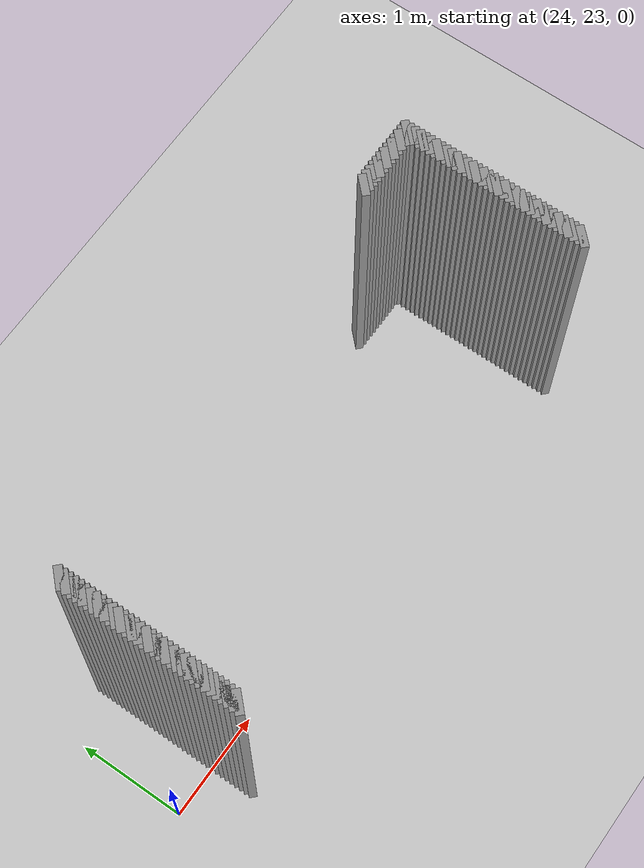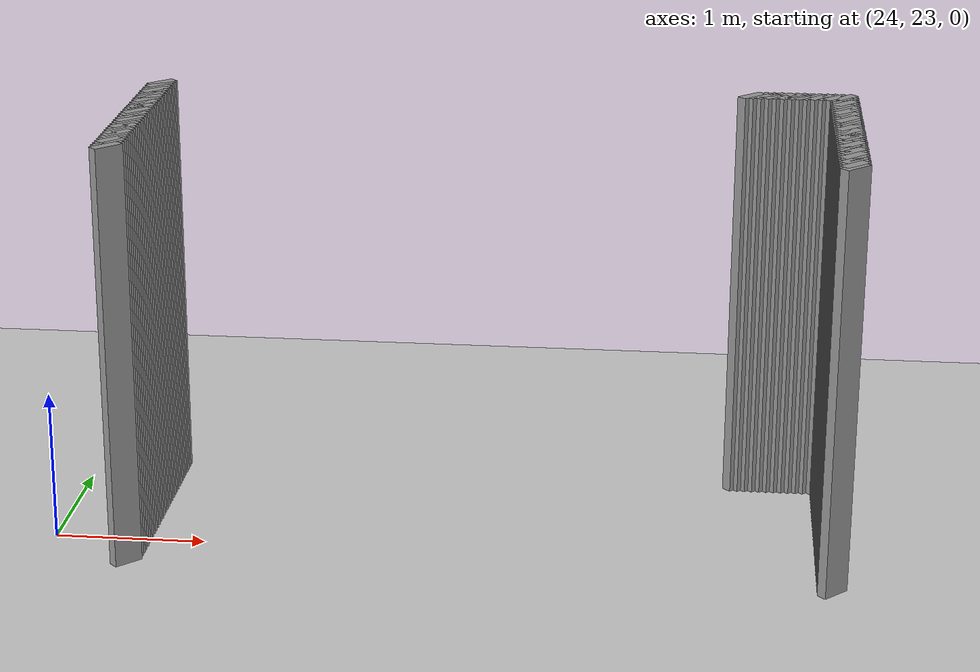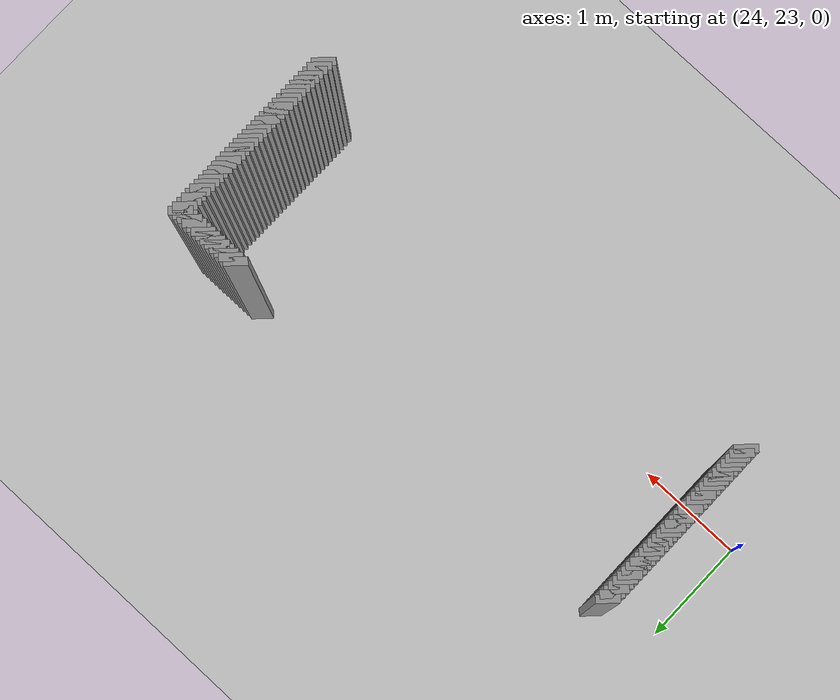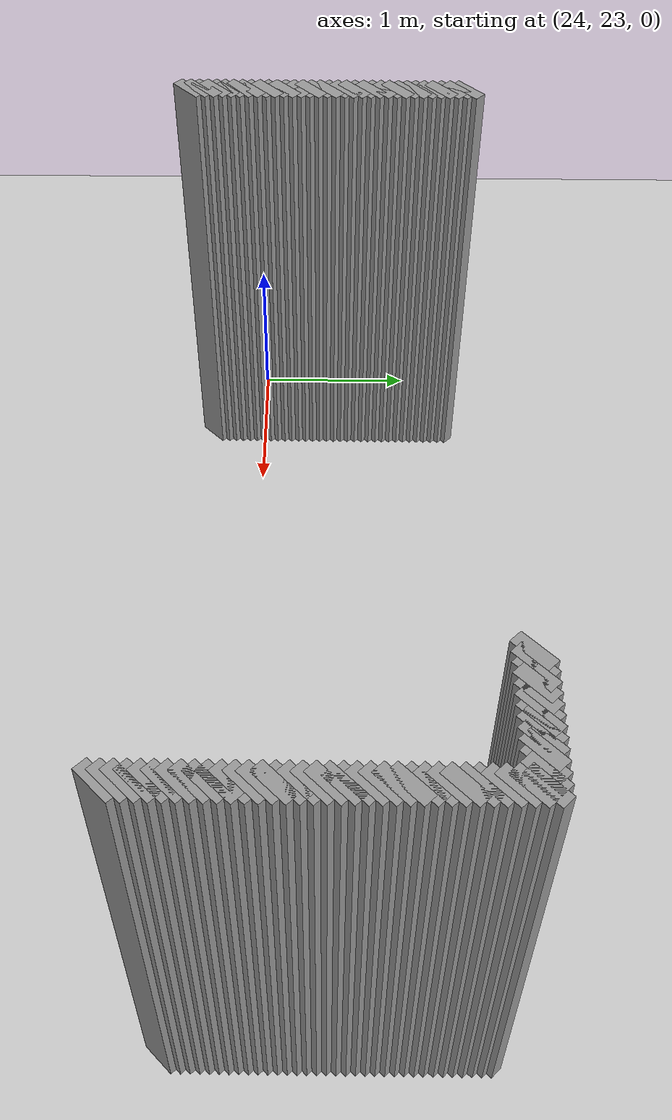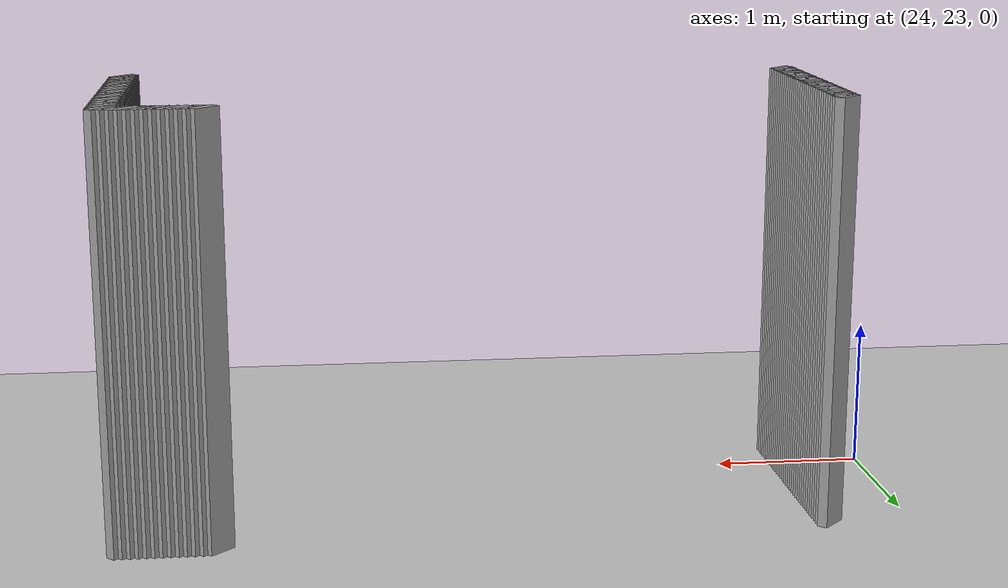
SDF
<sdf version="1.5">
 <world name="default">
  <include><uri>model://ground_plane</uri></include>
  <include><uri>model://sun</uri></include>
  <model name="grey_wall_80">
   <static>1</static>
   <link name="link">
    <pose>28.5 24.3  1.4 0 0 -0.785398163397</pose>
    <collision name="collision"><geometry><box><size>0.0707106781187 .2  2.8</size></box></geometry></collision>
    <visual name="visual">
     <cast_shadows>0</cast_shadows>
     <geometry><box><size>0.0707106781187 .2  2.8</size></box></geometry>
     <material>
      <script>
       <uri>model://grey_wall/materials/scripts</uri>
       <uri>model://grey_wall/materials/textures</uri>
       <name>vrc/grey_wall</name>
      </script>
     </material>
    </visual>
   </link>
  </model>
  <model name="grey_wall_81">
   <static>1</static>
   <link name="link">
    <pose>28.55 24.3  1.4 0 0 -0.785398163397</pose>
    <collision name="collision"><geometry><box><size>0.0707106781187 .2  2.8</size></box></geometry></collision>
    <visual name="visual">
     <cast_shadows>0</cast_shadows>
     <geometry><box><size>0.0707106781187 .2  2.8</size></box></geometry>
     <material>
      <script>
       <uri>model://grey_wall/materials/scripts</uri>
       <uri>model://grey_wall/materials/textures</uri>
       <name>vrc/grey_wall</name>
      </script>
     </material>
    </visual>
   </link>
  </model>
  <model name="grey_wall_82">
   <static>1</static>
   <link name="link">
    <pose>28.6 24.3  1.4 0 0 -0.785398163397</pose>
    <collision name="collision"><geometry><box><size>0.0707106781187 .2  2.8</size></box></geometry></collision>
    <visual name="visual">
     <cast_shadows>0</cast_shadows>
     <geometry><box><size>0.0707106781187 .2  2.8</size></box></geometry>
     <material>
      <script>
       <uri>model://grey_wall/materials/scripts</uri>
       <uri>model://grey_wall/materials/textures</uri>
       <name>vrc/grey_wall</name>
      </script>
     </material>
    </visual>
   </link>
  </model>
  <model name="grey_wall_83">
   <static>1</static>
   <link name="link">
    <pose>28.65 24.3  1.4 0 0 -0.785398163397</pose>
    <collision name="collision"><geometry><box><size>0.0707106781187 .2  2.8</size></box></geometry></collision>
    <visual name="visual">
     <cast_shadows>0</cast_shadows>
     <geometry><box><size>0.0707106781187 .2  2.8</size></box></geometry>
     <material>
      <script>
       <uri>model://grey_wall/materials/scripts</uri>
       <uri>model://grey_wall/materials/textures</uri>
       <name>vrc/grey_wall</name>
      </script>
     </material>
    </visual>
   </link>
  </model>
  <model name="grey_wall_84">
   <static>1</static>
   <link name="link">
    <pose>28.7 24.3  1.4 0 0 -0.785398163397</pose>
    <collision name="collision"><geometry><box><size>0.0707106781187 .2  2.8</size></box></geometry></collision>
    <visual name="visual">
     <cast_shadows>0</cast_shadows>
     <geometry><box><size>0.0707106781187 .2  2.8</size></box></geometry>
     <material>
      <script>
       <uri>model://grey_wall/materials/scripts</uri>
       <uri>model://grey_wall/materials/textures</uri>
       <name>vrc/grey_wall</name>
      </script>
     </material>
    </visual>
   </link>
  </model>
  <model name="grey_wall_85">
   <static>1</static>
   <link name="link">
    <pose>28.75 24.3  1.4 0 0 -0.785398163397</pose>
    <collision name="collision"><geometry><box><size>0.0707106781187 .2  2.8</size></box></geometry></collision>
    <visual name="visual">
     <cast_shadows>0</cast_shadows>
     <geometry><box><size>0.0707106781187 .2  2.8</size></box></geometry>
     <material>
      <script>
       <uri>model://grey_wall/materials/scripts</uri>
       <uri>model://grey_wall/materials/textures</uri>
       <name>vrc/grey_wall</name>
      </script>
     </material>
    </visual>
   </link>
  </model>
  <model name="grey_wall_86">
   <static>1</static>
   <link name="link">
    <pose>28.8 24.3  1.4 0 0 -0.785398163397</pose>
    <collision name="collision"><geometry><box><size>0.0707106781187 .2  2.8</size></box></geometry></collision>
    <visual name="visual">
     <cast_shadows>0</cast_shadows>
     <geometry><box><size>0.0707106781187 .2  2.8</size></box></geometry>
     <material>
      <script>
       <uri>model://grey_wall/materials/scripts</uri>
       <uri>model://grey_wall/materials/textures</uri>
       <name>vrc/grey_wall</name>
      </script>
     </material>
    </visual>
   </link>
  </model>
  <model name="grey_wall_87">
   <static>1</static>
   <link name="link">
    <pose>28.85 24.3  1.4 0 0 -0.785398163397</pose>
    <collision name="collision"><geometry><box><size>0.0707106781187 .2  2.8</size></box></geometry></collision>
    <visual name="visual">
     <cast_shadows>0</cast_shadows>
     <geometry><box><size>0.0707106781187 .2  2.8</size></box></geometry>
     <material>
      <script>
       <uri>model://grey_wall/materials/scripts</uri>
       <uri>model://grey_wall/materials/textures</uri>
       <name>vrc/grey_wall</name>
      </script>
     </material>
    </visual>
   </link>
  </model>
  <model name="grey_wall_88">
   <static>1</static>
   <link name="link">
    <pose>28.9 24.3  1.4 0 0 -0.785398163397</pose>
    <collision name="collision"><geometry><box><size>0.0707106781187 .2  2.8</size></box></geometry></collision>
    <visual name="visual">
     <cast_shadows>0</cast_shadows>
     <geometry><box><size>0.0707106781187 .2  2.8</size></box></geometry>
     <material>
      <script>
       <uri>model://grey_wall/materials/scripts</uri>
       <uri>model://grey_wall/materials/textures</uri>
       <name>vrc/grey_wall</name>
      </script>
     </material>
    </visual>
   </link>
  </model>
  <model name="grey_wall_89">
   <static>1</static>
   <link name="link">
    <pose>28.95 24.3  1.4 0 0 -0.785398163397</pose>
    <collision name="collision"><geometry><box><size>0.0707106781187 .2  2.8</size></box></geometry></collision>
    <visual name="visual">
     <cast_shadows>0</cast_shadows>
     <geometry><box><size>0.0707106781187 .2  2.8</size></box></geometry>
     <material>
      <script>
       <uri>model://grey_wall/materials/scripts</uri>
       <uri>model://grey_wall/materials/textures</uri>
       <name>vrc/grey_wall</name>
      </script>
     </material>
    </visual>
   </link>
  </model>
  <model name="grey_wall_90">
   <static>1</static>
   <link name="link">
    <pose>29.0 24.3  1.4 0 0 -0.785398163397</pose>
    <collision name="collision"><geometry><box><size>0.0707106781187 .2  2.8</size></box></geometry></collision>
    <visual name="visual">
     <cast_shadows>0</cast_shadows>
     <geometry><box><size>0.0707106781187 .2  2.8</size></box></geometry>
     <material>
      <script>
       <uri>model://grey_wall/materials/scripts</uri>
       <uri>model://grey_wall/materials/textures</uri>
       <name>vrc/grey_wall</name>
      </script>
     </material>
    </visual>
   </link>
  </model>
  <model name="grey_wall_91">
   <static>1</static>
   <link name="link">
    <pose>29.05 24.3  1.4 0 0 -0.785398163397</pose>
    <collision name="collision"><geometry><box><size>0.0707106781187 .2  2.8</size></box></geometry></collision>
    <visual name="visual">
     <cast_shadows>0</cast_shadows>
     <geometry><box><size>0.0707106781187 .2  2.8</size></box></geometry>
     <material>
      <script>
       <uri>model://grey_wall/materials/scripts</uri>
       <uri>model://grey_wall/materials/textures</uri>
       <name>vrc/grey_wall</name>
      </script>
     </material>
    </visual>
   </link>
  </model>
  <model name="grey_wall_92">
   <static>1</static>
   <link name="link">
    <pose>29.1 24.3  1.4 0 0 -0.785398163397</pose>
    <collision name="collision"><geometry><box><size>0.0707106781187 .2  2.8</size></box></geometry></collision>
    <visual name="visual">
     <cast_shadows>0</cast_shadows>
     <geometry><box><size>0.0707106781187 .2  2.8</size></box></geometry>
     <material>
      <script>
       <uri>model://grey_wall/materials/scripts</uri>
       <uri>model://grey_wall/materials/textures</uri>
       <name>vrc/grey_wall</name>
      </script>
     </material>
    </visual>
   </link>
  </model>
  <model name="grey_wall_93">
   <static>1</static>
   <link name="link">
    <pose>24.55 24.25  1.4 0 0 -0.785398163397</pose>
    <collision name="collision"><geometry><box><size>0.0707106781187 .2  2.8</size></box></geometry></collision>
    <visual name="visual">
     <cast_shadows>0</cast_shadows>
     <geometry><box><size>0.0707106781187 .2  2.8</size></box></geometry>
     <material>
      <script>
       <uri>model://grey_wall/materials/scripts</uri>
       <uri>model://grey_wall/materials/textures</uri>
       <name>vrc/grey_wall</name>
      </script>
     </material>
    </visual>
   </link>
  </model>
  <model name="grey_wall_94">
   <static>1</static>
   <link name="link">
    <pose>29.1 24.25  1.4 0 0 -0.785398163397</pose>
    <collision name="collision"><geometry><box><size>0.0707106781187 .2  2.8</size></box></geometry></collision>
    <visual name="visual">
     <cast_shadows>0</cast_shadows>
     <geometry><box><size>0.0707106781187 .2  2.8</size></box></geometry>
     <material>
      <script>
       <uri>model://grey_wall/materials/scripts</uri>
       <uri>model://grey_wall/materials/textures</uri>
       <name>vrc/grey_wall</name>
      </script>
     </material>
    </visual>
   </link>
  </model>
  <model name="grey_wall_95">
   <static>1</static>
   <link name="link">
    <pose>24.55 24.2  1.4 0 0 -0.785398163397</pose>
    <collision name="collision"><geometry><box><size>0.0707106781187 .2  2.8</size></box></geometry></collision>
    <visual name="visual">
     <cast_shadows>0</cast_shadows>
     <geometry><box><size>0.0707106781187 .2  2.8</size></box></geometry>
     <material>
      <script>
       <uri>model://grey_wall/materials/scripts</uri>
       <uri>model://grey_wall/materials/textures</uri>
       <name>vrc/grey_wall</name>
      </script>
     </material>
    </visual>
   </link>
  </model>
  <model name="grey_wall_96">
   <static>1</static>
   <link name="link">
    <pose>29.1 24.2  1.4 0 0 -0.785398163397</pose>
    <collision name="collision"><geometry><box><size>0.0707106781187 .2  2.8</size></box></geometry></collision>
    <visual name="visual">
     <cast_shadows>0</cast_shadows>
     <geometry><box><size>0.0707106781187 .2  2.8</size></box></geometry>
     <material>
      <script>
       <uri>model://grey_wall/materials/scripts</uri>
       <uri>model://grey_wall/materials/textures</uri>
       <name>vrc/grey_wall</name>
      </script>
     </material>
    </visual>
   </link>
  </model>
  <model name="grey_wall_97">
   <static>1</static>
   <link name="link">
    <pose>24.55 24.15  1.4 0 0 -0.785398163397</pose>
    <collision name="collision"><geometry><box><size>0.0707106781187 .2  2.8</size></box></geometry></collision>
    <visual name="visual">
     <cast_shadows>0</cast_shadows>
     <geometry><box><size>0.0707106781187 .2  2.8</size></box></geometry>
     <material>
      <script>
       <uri>model://grey_wall/materials/scripts</uri>
       <uri>model://grey_wall/materials/textures</uri>
       <name>vrc/grey_wall</name>
      </script>
     </material>
    </visual>
   </link>
  </model>
  <model name="grey_wall_98">
   <static>1</static>
   <link name="link">
    <pose>29.1 24.15  1.4 0 0 -0.785398163397</pose>
    <collision name="collision"><geometry><box><size>0.0707106781187 .2  2.8</size></box></geometry></collision>
    <visual name="visual">
     <cast_shadows>0</cast_shadows>
     <geometry><box><size>0.0707106781187 .2  2.8</size></box></geometry>
     <material>
      <script>
       <uri>model://grey_wall/materials/scripts</uri>
       <uri>model://grey_wall/materials/textures</uri>
       <name>vrc/grey_wall</name>
      </script>
     </material>
    </visual>
   </link>
  </model>
  <model name="grey_wall_99">
   <static>1</static>
   <link name="link">
    <pose>24.55 24.1  1.4 0 0 -0.785398163397</pose>
    <collision name="collision"><geometry><box><size>0.0707106781187 .2  2.8</size></box></geometry></collision>
    <visual name="visual">
     <cast_shadows>0</cast_shadows>
     <geometry><box><size>0.0707106781187 .2  2.8</size></box></geometry>
     <material>
      <script>
       <uri>model://grey_wall/materials/scripts</uri>
       <uri>model://grey_wall/materials/textures</uri>
       <name>vrc/grey_wall</name>
      </script>
     </material>
    </visual>
   </link>
  </model>
  <model name="grey_wall_100">
   <static>1</static>
   <link name="link">
    <pose>29.1 24.1  1.4 0 0 -0.785398163397</pose>
    <collision name="collision"><geometry><box><size>0.0707106781187 .2  2.8</size></box></geometry></collision>
    <visual name="visual">
     <cast_shadows>0</cast_shadows>
     <geometry><box><size>0.0707106781187 .2  2.8</size></box></geometry>
     <material>
      <script>
       <uri>model://grey_wall/materials/scripts</uri>
       <uri>model://grey_wall/materials/textures</uri>
       <name>vrc/grey_wall</name>
      </script>
     </material>
    </visual>
   </link>
  </model>
  <model name="grey_wall_101">
   <static>1</static>
   <link name="link">
    <pose>24.55 24.05  1.4 0 0 -0.785398163397</pose>
    <collision name="collision"><geometry><box><size>0.0707106781187 .2  2.8</size></box></geometry></collision>
    <visual name="visual">
     <cast_shadows>0</cast_shadows>
     <geometry><box><size>0.0707106781187 .2  2.8</size></box></geometry>
     <material>
      <script>
       <uri>model://grey_wall/materials/scripts</uri>
       <uri>model://grey_wall/materials/textures</uri>
       <name>vrc/grey_wall</name>
      </script>
     </material>
    </visual>
   </link>
  </model>
  <model name="grey_wall_102">
   <static>1</static>
   <link name="link">
    <pose>29.1 24.05  1.4 0 0 -0.785398163397</pose>
    <collision name="collision"><geometry><box><size>0.0707106781187 .2  2.8</size></box></geometry></collision>
    <visual name="visual">
     <cast_shadows>0</cast_shadows>
     <geometry><box><size>0.0707106781187 .2  2.8</size></box></geometry>
     <material>
      <script>
       <uri>model://grey_wall/materials/scripts</uri>
       <uri>model://grey_wall/materials/textures</uri>
       <name>vrc/grey_wall</name>
      </script>
     </material>
    </visual>
   </link>
  </model>
  <model name="grey_wall_103">
   <static>1</static>
   <link name="link">
    <pose>24.55 24.0  1.4 0 0 -0.785398163397</pose>
    <collision name="collision"><geometry><box><size>0.0707106781187 .2  2.8</size></box></geometry></collision>
    <visual name="visual">
     <cast_shadows>0</cast_shadows>
     <geometry><box><size>0.0707106781187 .2  2.8</size></box></geometry>
     <material>
      <script>
       <uri>model://grey_wall/materials/scripts</uri>
       <uri>model://grey_wall/materials/textures</uri>
       <name>vrc/grey_wall</name>
      </script>
     </material>
    </visual>
   </link>
  </model>
  <model name="grey_wall_104">
   <static>1</static>
   <link name="link">
    <pose>29.1 24.0  1.4 0 0 -0.785398163397</pose>
    <collision name="collision"><geometry><box><size>0.0707106781187 .2  2.8</size></box></geometry></collision>
    <visual name="visual">
     <cast_shadows>0</cast_shadows>
     <geometry><box><size>0.0707106781187 .2  2.8</size></box></geometry>
     <material>
      <script>
       <uri>model://grey_wall/materials/scripts</uri>
       <uri>model://grey_wall/materials/textures</uri>
       <name>vrc/grey_wall</name>
      </script>
     </material>
    </visual>
   </link>
  </model>
  <model name="grey_wall_105">
   <static>1</static>
   <link name="link">
    <pose>24.55 23.95  1.4 0 0 -0.785398163397</pose>
    <collision name="collision"><geometry><box><size>0.0707106781187 .2  2.8</size></box></geometry></collision>
    <visual name="visual">
     <cast_shadows>0</cast_shadows>
     <geometry><box><size>0.0707106781187 .2  2.8</size></box></geometry>
     <material>
      <script>
       <uri>model://grey_wall/materials/scripts</uri>
       <uri>model://grey_wall/materials/textures</uri>
       <name>vrc/grey_wall</name>
      </script>
     </material>
    </visual>
   </link>
  </model>
  <model name="grey_wall_106">
   <static>1</static>
   <link name="link">
    <pose>29.1 23.95  1.4 0 0 -0.785398163397</pose>
    <collision name="collision"><geometry><box><size>0.0707106781187 .2  2.8</size></box></geometry></collision>
    <visual name="visual">
     <cast_shadows>0</cast_shadows>
     <geometry><box><size>0.0707106781187 .2  2.8</size></box></geometry>
     <material>
      <script>
       <uri>model://grey_wall/materials/scripts</uri>
       <uri>model://grey_wall/materials/textures</uri>
       <name>vrc/grey_wall</name>
      </script>
     </material>
    </visual>
   </link>
  </model>
  <model name="grey_wall_107">
   <static>1</static>
   <link name="link">
    <pose>24.55 23.9  1.4 0 0 -0.785398163397</pose>
    <collision name="collision"><geometry><box><size>0.0707106781187 .2  2.8</size></box></geometry></collision>
    <visual name="visual">
     <cast_shadows>0</cast_shadows>
     <geometry><box><size>0.0707106781187 .2  2.8</size></box></geometry>
     <material>
      <script>
       <uri>model://grey_wall/materials/scripts</uri>
       <uri>model://grey_wall/materials/textures</uri>
       <name>vrc/grey_wall</name>
      </script>
     </material>
    </visual>
   </link>
  </model>
  <model name="grey_wall_108">
   <static>1</static>
   <link name="link">
    <pose>29.1 23.9  1.4 0 0 -0.785398163397</pose>
    <collision name="collision"><geometry><box><size>0.0707106781187 .2  2.8</size></box></geometry></collision>
    <visual name="visual">
     <cast_shadows>0</cast_shadows>
     <geometry><box><size>0.0707106781187 .2  2.8</size></box></geometry>
     <material>
      <script>
       <uri>model://grey_wall/materials/scripts</uri>
       <uri>model://grey_wall/materials/textures</uri>
       <name>vrc/grey_wall</name>
      </script>
     </material>
    </visual>
   </link>
  </model>
  <model name="grey_wall_109">
   <static>1</static>
   <link name="link">
    <pose>24.55 23.85  1.4 0 0 -0.785398163397</pose>
    <collision name="collision"><geometry><box><size>0.0707106781187 .2  2.8</size></box></geometry></collision>
    <visual name="visual">
     <cast_shadows>0</cast_shadows>
     <geometry><box><size>0.0707106781187 .2  2.8</size></box></geometry>
     <material>
      <script>
       <uri>model://grey_wall/materials/scripts</uri>
       <uri>model://grey_wall/materials/textures</uri>
       <name>vrc/grey_wall</name>
      </script>
     </material>
    </visual>
   </link>
  </model>
  <model name="grey_wall_110">
   <static>1</static>
   <link name="link">
    <pose>29.1 23.85  1.4 0 0 -0.785398163397</pose>
    <collision name="collision"><geometry><box><size>0.0707106781187 .2  2.8</size></box></geometry></collision>
    <visual name="visual">
     <cast_shadows>0</cast_shadows>
     <geometry><box><size>0.0707106781187 .2  2.8</size></box></geometry>
     <material>
      <script>
       <uri>model://grey_wall/materials/scripts</uri>
       <uri>model://grey_wall/materials/textures</uri>
       <name>vrc/grey_wall</name>
      </script>
     </material>
    </visual>
   </link>
  </model>
  <model name="grey_wall_111">
   <static>1</static>
   <link name="link">
    <pose>24.55 23.8  1.4 0 0 -0.785398163397</pose>
    <collision name="collision"><geometry><box><size>0.0707106781187 .2  2.8</size></box></geometry></collision>
    <visual name="visual">
     <cast_shadows>0</cast_shadows>
     <geometry><box><size>0.0707106781187 .2  2.8</size></box></geometry>
     <material>
      <script>
       <uri>model://grey_wall/materials/scripts</uri>
       <uri>model://grey_wall/materials/textures</uri>
       <name>vrc/grey_wall</name>
      </script>
     </material>
    </visual>
   </link>
  </model>
  <model name="grey_wall_112">
   <static>1</static>
   <link name="link">
    <pose>29.1 23.8  1.4 0 0 -0.785398163397</pose>
    <collision name="collision"><geometry><box><size>0.0707106781187 .2  2.8</size></box></geometry></collision>
    <visual name="visual">
     <cast_shadows>0</cast_shadows>
     <geometry><box><size>0.0707106781187 .2  2.8</size></box></geometry>
     <material>
      <script>
       <uri>model://grey_wall/materials/scripts</uri>
       <uri>model://grey_wall/materials/textures</uri>
       <name>vrc/grey_wall</name>
      </script>
     </material>
    </visual>
   </link>
  </model>
  <model name="grey_wall_113">
   <static>1</static>
   <link name="link">
    <pose>24.55 23.75  1.4 0 0 -0.785398163397</pose>
    <collision name="collision"><geometry><box><size>0.0707106781187 .2  2.8</size></box></geometry></collision>
    <visual name="visual">
     <cast_shadows>0</cast_shadows>
     <geometry><box><size>0.0707106781187 .2  2.8</size></box></geometry>
     <material>
      <script>
       <uri>model://grey_wall/materials/scripts</uri>
       <uri>model://grey_wall/materials/textures</uri>
       <name>vrc/grey_wall</name>
      </script>
     </material>
    </visual>
   </link>
  </model>
  <model name="grey_wall_114">
   <static>1</static>
   <link name="link">
    <pose>29.1 23.75  1.4 0 0 -0.785398163397</pose>
    <collision name="collision"><geometry><box><size>0.0707106781187 .2  2.8</size></box></geometry></collision>
    <visual name="visual">
     <cast_shadows>0</cast_shadows>
     <geometry><box><size>0.0707106781187 .2  2.8</size></box></geometry>
     <material>
      <script>
       <uri>model://grey_wall/materials/scripts</uri>
       <uri>model://grey_wall/materials/textures</uri>
       <name>vrc/grey_wall</name>
      </script>
     </material>
    </visual>
   </link>
  </model>
  <model name="grey_wall_115">
   <static>1</static>
   <link name="link">
    <pose>24.55 23.7  1.4 0 0 -0.785398163397</pose>
    <collision name="collision"><geometry><box><size>0.0707106781187 .2  2.8</size></box></geometry></collision>
    <visual name="visual">
     <cast_shadows>0</cast_shadows>
     <geometry><box><size>0.0707106781187 .2  2.8</size></box></geometry>
     <material>
      <script>
       <uri>model://grey_wall/materials/scripts</uri>
       <uri>model://grey_wall/materials/textures</uri>
       <name>vrc/grey_wall</name>
      </script>
     </material>
    </visual>
   </link>
  </model>
  <model name="grey_wall_116">
   <static>1</static>
   <link name="link">
    <pose>29.1 23.7  1.4 0 0 -0.785398163397</pose>
    <collision name="collision"><geometry><box><size>0.0707106781187 .2  2.8</size></box></geometry></collision>
    <visual name="visual">
     <cast_shadows>0</cast_shadows>
     <geometry><box><size>0.0707106781187 .2  2.8</size></box></geometry>
     <material>
      <script>
       <uri>model://grey_wall/materials/scripts</uri>
       <uri>model://grey_wall/materials/textures</uri>
       <name>vrc/grey_wall</name>
      </script>
     </material>
    </visual>
   </link>
  </model>
  <model name="grey_wall_117">
   <static>1</static>
   <link name="link">
    <pose>24.55 23.65  1.4 0 0 -0.785398163397</pose>
    <collision name="collision"><geometry><box><size>0.0707106781187 .2  2.8</size></box></geometry></collision>
    <visual name="visual">
     <cast_shadows>0</cast_shadows>
     <geometry><box><size>0.0707106781187 .2  2.8</size></box></geometry>
     <material>
      <script>
       <uri>model://grey_wall/materials/scripts</uri>
       <uri>model://grey_wall/materials/textures</uri>
       <name>vrc/grey_wall</name>
      </script>
     </material>
    </visual>
   </link>
  </model>
  <model name="grey_wall_118">
   <static>1</static>
   <link name="link">
    <pose>29.1 23.65  1.4 0 0 -0.785398163397</pose>
    <collision name="collision"><geometry><box><size>0.0707106781187 .2  2.8</size></box></geometry></collision>
    <visual name="visual">
     <cast_shadows>0</cast_shadows>
     <geometry><box><size>0.0707106781187 .2  2.8</size></box></geometry>
     <material>
      <script>
       <uri>model://grey_wall/materials/scripts</uri>
       <uri>model://grey_wall/materials/textures</uri>
       <name>vrc/grey_wall</name>
      </script>
     </material>
    </visual>
   </link>
  </model>
  <model name="grey_wall_119">
   <static>1</static>
   <link name="link">
    <pose>24.55 23.6  1.4 0 0 -0.785398163397</pose>
    <collision name="collision"><geometry><box><size>0.0707106781187 .2  2.8</size></box></geometry></collision>
    <visual name="visual">
     <cast_shadows>0</cast_shadows>
     <geometry><box><size>0.0707106781187 .2  2.8</size></box></geometry>
     <material>
      <script>
       <uri>model://grey_wall/materials/scripts</uri>
       <uri>model://grey_wall/materials/textures</uri>
       <name>vrc/grey_wall</name>
      </script>
     </material>
    </visual>
   </link>
  </model>
  <model name="grey_wall_120">
   <static>1</static>
   <link name="link">
    <pose>29.1 23.6  1.4 0 0 -0.785398163397</pose>
    <collision name="collision"><geometry><box><size>0.0707106781187 .2  2.8</size></box></geometry></collision>
    <visual name="visual">
     <cast_shadows>0</cast_shadows>
     <geometry><box><size>0.0707106781187 .2  2.8</size></box></geometry>
     <material>
      <script>
       <uri>model://grey_wall/materials/scripts</uri>
       <uri>model://grey_wall/materials/textures</uri>
       <name>vrc/grey_wall</name>
      </script>
     </material>
    </visual>
   </link>
  </model>
  <model name="grey_wall_121">
   <static>1</static>
   <link name="link">
    <pose>24.55 23.55  1.4 0 0 -0.785398163397</pose>
    <collision name="collision"><geometry><box><size>0.0707106781187 .2  2.8</size></box></geometry></collision>
    <visual name="visual">
     <cast_shadows>0</cast_shadows>
     <geometry><box><size>0.0707106781187 .2  2.8</size></box></geometry>
     <material>
      <script>
       <uri>model://grey_wall/materials/scripts</uri>
       <uri>model://grey_wall/materials/textures</uri>
       <name>vrc/grey_wall</name>
      </script>
     </material>
    </visual>
   </link>
  </model>
  <model name="grey_wall_122">
   <static>1</static>
   <link name="link">
    <pose>29.1 23.55  1.4 0 0 -0.785398163397</pose>
    <collision name="collision"><geometry><box><size>0.0707106781187 .2  2.8</size></box></geometry></collision>
    <visual name="visual">
     <cast_shadows>0</cast_shadows>
     <geometry><box><size>0.0707106781187 .2  2.8</size></box></geometry>
     <material>
      <script>
       <uri>model://grey_wall/materials/scripts</uri>
       <uri>model://grey_wall/materials/textures</uri>
       <name>vrc/grey_wall</name>
      </script>
     </material>
    </visual>
   </link>
  </model>
  <model name="grey_wall_123">
   <static>1</static>
   <link name="link">
    <pose>24.55 23.5  1.4 0 0 -0.785398163397</pose>
    <collision name="collision"><geometry><box><size>0.0707106781187 .2  2.8</size></box></geometry></collision>
    <visual name="visual">
     <cast_shadows>0</cast_shadows>
     <geometry><box><size>0.0707106781187 .2  2.8</size></box></geometry>
     <material>
      <script>
       <uri>model://grey_wall/materials/scripts</uri>
       <uri>model://grey_wall/materials/textures</uri>
       <name>vrc/grey_wall</name>
      </script>
     </material>
    </visual>
   </link>
  </model>
  <model name="grey_wall_124">
   <static>1</static>
   <link name="link">
    <pose>29.1 23.5  1.4 0 0 -0.785398163397</pose>
    <collision name="collision"><geometry><box><size>0.0707106781187 .2  2.8</size></box></geometry></collision>
    <visual name="visual">
     <cast_shadows>0</cast_shadows>
     <geometry><box><size>0.0707106781187 .2  2.8</size></box></geometry>
     <material>
      <script>
       <uri>model://grey_wall/materials/scripts</uri>
       <uri>model://grey_wall/materials/textures</uri>
       <name>vrc/grey_wall</name>
      </script>
     </material>
    </visual>
   </link>
  </model>
  <model name="grey_wall_125">
   <static>1</static>
   <link name="link">
    <pose>24.55 23.45  1.4 0 0 -0.785398163397</pose>
    <collision name="collision"><geometry><box><size>0.0707106781187 .2  2.8</size></box></geometry></collision>
    <visual name="visual">
     <cast_shadows>0</cast_shadows>
     <geometry><box><size>0.0707106781187 .2  2.8</size></box></geometry>
     <material>
      <script>
       <uri>model://grey_wall/materials/scripts</uri>
       <uri>model://grey_wall/materials/textures</uri>
       <name>vrc/grey_wall</name>
      </script>
     </material>
    </visual>
   </link>
  </model>
  <model name="grey_wall_126">
   <static>1</static>
   <link name="link">
    <pose>29.1 23.45  1.4 0 0 -0.785398163397</pose>
    <collision name="collision"><geometry><box><size>0.0707106781187 .2  2.8</size></box></geometry></collision>
    <visual name="visual">
     <cast_shadows>0</cast_shadows>
     <geometry><box><size>0.0707106781187 .2  2.8</size></box></geometry>
     <material>
      <script>
       <uri>model://grey_wall/materials/scripts</uri>
       <uri>model://grey_wall/materials/textures</uri>
       <name>vrc/grey_wall</name>
      </script>
     </material>
    </visual>
   </link>
  </model>
  <model name="grey_wall_127">
   <static>1</static>
   <link name="link">
    <pose>24.55 23.4  1.4 0 0 -0.785398163397</pose>
    <collision name="collision"><geometry><box><size>0.0707106781187 .2  2.8</size></box></geometry></collision>
    <visual name="visual">
     <cast_shadows>0</cast_shadows>
     <geometry><box><size>0.0707106781187 .2  2.8</size></box></geometry>
     <material>
      <script>
       <uri>model://grey_wall/materials/scripts</uri>
       <uri>model://grey_wall/materials/textures</uri>
       <name>vrc/grey_wall</name>
      </script>
     </material>
    </visual>
   </link>
  </model>
  <model name="grey_wall_128">
   <static>1</static>
   <link name="link">
    <pose>29.1 23.4  1.4 0 0 -0.785398163397</pose>
    <collision name="collision"><geometry><box><size>0.0707106781187 .2  2.8</size></box></geometry></collision>
    <visual name="visual">
     <cast_shadows>0</cast_shadows>
     <geometry><box><size>0.0707106781187 .2  2.8</size></box></geometry>
     <material>
      <script>
       <uri>model://grey_wall/materials/scripts</uri>
       <uri>model://grey_wall/materials/textures</uri>
       <name>vrc/grey_wall</name>
      </script>
     </material>
    </visual>
   </link>
  </model>
  <model name="grey_wall_129">
   <static>1</static>
   <link name="link">
    <pose>24.55 23.35  1.4 0 0 -0.785398163397</pose>
    <collision name="collision"><geometry><box><size>0.0707106781187 .2  2.8</size></box></geometry></collision>
    <visual name="visual">
     <cast_shadows>0</cast_shadows>
     <geometry><box><size>0.0707106781187 .2  2.8</size></box></geometry>
     <material>
      <script>
       <uri>model://grey_wall/materials/scripts</uri>
       <uri>model://grey_wall/materials/textures</uri>
       <name>vrc/grey_wall</name>
      </script>
     </material>
    </visual>
   </link>
  </model>
  <model name="grey_wall_130">
   <static>1</static>
   <link name="link">
    <pose>29.1 23.35  1.4 0 0 -0.785398163397</pose>
    <collision name="collision"><geometry><box><size>0.0707106781187 .2  2.8</size></box></geometry></collision>
    <visual name="visual">
     <cast_shadows>0</cast_shadows>
     <geometry><box><size>0.0707106781187 .2  2.8</size></box></geometry>
     <material>
      <script>
       <uri>model://grey_wall/materials/scripts</uri>
       <uri>model://grey_wall/materials/textures</uri>
       <name>vrc/grey_wall</name>
      </script>
     </material>
    </visual>
   </link>
  </model>
  <model name="grey_wall_131">
   <static>1</static>
   <link name="link">
    <pose>24.55 23.3  1.4 0 0 -0.785398163397</pose>
    <collision name="collision"><geometry><box><size>0.0707106781187 .2  2.8</size></box></geometry></collision>
    <visual name="visual">
     <cast_shadows>0</cast_shadows>
     <geometry><box><size>0.0707106781187 .2  2.8</size></box></geometry>
     <material>
      <script>
       <uri>model://grey_wall/materials/scripts</uri>
       <uri>model://grey_wall/materials/textures</uri>
       <name>vrc/grey_wall</name>
      </script>
     </material>
    </visual>
   </link>
  </model>
  <model name="grey_wall_132">
   <static>1</static>
   <link name="link">
    <pose>29.1 23.3  1.4 0 0 -0.785398163397</pose>
    <collision name="collision"><geometry><box><size>0.0707106781187 .2  2.8</size></box></geometry></collision>
    <visual name="visual">
     <cast_shadows>0</cast_shadows>
     <geometry><box><size>0.0707106781187 .2  2.8</size></box></geometry>
     <material>
      <script>
       <uri>model://grey_wall/materials/scripts</uri>
       <uri>model://grey_wall/materials/textures</uri>
       <name>vrc/grey_wall</name>
      </script>
     </material>
    </visual>
   </link>
  </model>
  <model name="grey_wall_133">
   <static>1</static>
   <link name="link">
    <pose>24.55 23.25  1.4 0 0 -0.785398163397</pose>
    <collision name="collision"><geometry><box><size>0.0707106781187 .2  2.8</size></box></geometry></collision>
    <visual name="visual">
     <cast_shadows>0</cast_shadows>
     <geometry><box><size>0.0707106781187 .2  2.8</size></box></geometry>
     <material>
      <script>
       <uri>model://grey_wall/materials/scripts</uri>
       <uri>model://grey_wall/materials/textures</uri>
       <name>vrc/grey_wall</name>
      </script>
     </material>
    </visual>
   </link>
  </model>
  <model name="grey_wall_134">
   <static>1</static>
   <link name="link">
    <pose>29.1 23.25  1.4 0 0 -0.785398163397</pose>
    <collision name="collision"><geometry><box><size>0.0707106781187 .2  2.8</size></box></geometry></collision>
    <visual name="visual">
     <cast_shadows>0</cast_shadows>
     <geometry><box><size>0.0707106781187 .2  2.8</size></box></geometry>
     <material>
      <script>
       <uri>model://grey_wall/materials/scripts</uri>
       <uri>model://grey_wall/materials/textures</uri>
       <name>vrc/grey_wall</name>
      </script>
     </material>
    </visual>
   </link>
  </model>
  <model name="grey_wall_135">
   <static>1</static>
   <link name="link">
    <pose>24.55 23.2  1.4 0 0 -0.785398163397</pose>
    <collision name="collision"><geometry><box><size>0.0707106781187 .2  2.8</size></box></geometry></collision>
    <visual name="visual">
     <cast_shadows>0</cast_shadows>
     <geometry><box><size>0.0707106781187 .2  2.8</size></box></geometry>
     <material>
      <script>
       <uri>model://grey_wall/materials/scripts</uri>
       <uri>model://grey_wall/materials/textures</uri>
       <name>vrc/grey_wall</name>
      </script>
     </material>
    </visual>
   </link>
  </model>
  <model name="grey_wall_136">
   <static>1</static>
   <link name="link">
    <pose>29.1 23.2  1.4 0 0 -0.785398163397</pose>
    <collision name="collision"><geometry><box><size>0.0707106781187 .2  2.8</size></box></geometry></collision>
    <visual name="visual">
     <cast_shadows>0</cast_shadows>
     <geometry><box><size>0.0707106781187 .2  2.8</size></box></geometry>
     <material>
      <script>
       <uri>model://grey_wall/materials/scripts</uri>
       <uri>model://grey_wall/materials/textures</uri>
       <name>vrc/grey_wall</name>
      </script>
     </material>
    </visual>
   </link>
  </model>
  <model name="grey_wall_137">
   <static>1</static>
   <link name="link">
    <pose>24.55 23.15  1.4 0 0 -0.785398163397</pose>
    <collision name="collision"><geometry><box><size>0.0707106781187 .2  2.8</size></box></geometry></collision>
    <visual name="visual">
     <cast_shadows>0</cast_shadows>
     <geometry><box><size>0.0707106781187 .2  2.8</size></box></geometry>
     <material>
      <script>
       <uri>model://grey_wall/materials/scripts</uri>
       <uri>model://grey_wall/materials/textures</uri>
       <name>vrc/grey_wall</name>
      </script>
     </material>
    </visual>
   </link>
  </model>
  <model name="grey_wall_138">
   <static>1</static>
   <link name="link">
    <pose>29.1 23.15  1.4 0 0 -0.785398163397</pose>
    <collision name="collision"><geometry><box><size>0.0707106781187 .2  2.8</size></box></geometry></collision>
    <visual name="visual">
     <cast_shadows>0</cast_shadows>
     <geometry><box><size>0.0707106781187 .2  2.8</size></box></geometry>
     <material>
      <script>
       <uri>model://grey_wall/materials/scripts</uri>
       <uri>model://grey_wall/materials/textures</uri>
       <name>vrc/grey_wall</name>
      </script>
     </material>
    </visual>
   </link>
  </model>
  <model name="grey_wall_139">
   <static>1</static>
   <link name="link">
    <pose>24.55 23.1  1.4 0 0 -0.785398163397</pose>
    <collision name="collision"><geometry><box><size>0.0707106781187 .2  2.8</size></box></geometry></collision>
    <visual name="visual">
     <cast_shadows>0</cast_shadows>
     <geometry><box><size>0.0707106781187 .2  2.8</size></box></geometry>
     <material>
      <script>
       <uri>model://grey_wall/materials/scripts</uri>
       <uri>model://grey_wall/materials/textures</uri>
       <name>vrc/grey_wall</name>
      </script>
     </material>
    </visual>
   </link>
  </model>
  <model name="grey_wall_140">
   <static>1</static>
   <link name="link">
    <pose>29.1 23.1  1.4 0 0 -0.785398163397</pose>
    <collision name="collision"><geometry><box><size>0.0707106781187 .2  2.8</size></box></geometry></collision>
    <visual name="visual">
     <cast_shadows>0</cast_shadows>
     <geometry><box><size>0.0707106781187 .2  2.8</size></box></geometry>
     <material>
      <script>
       <uri>model://grey_wall/materials/scripts</uri>
       <uri>model://grey_wall/materials/textures</uri>
       <name>vrc/grey_wall</name>
      </script>
     </material>
    </visual>
   </link>
  </model>
  <model name="grey_wall_141">
   <static>1</static>
   <link name="link">
    <pose>24.55 23.05  1.4 0 0 -0.785398163397</pose>
    <collision name="collision"><geometry><box><size>0.0707106781187 .2  2.8</size></box></geometry></collision>
    <visual name="visual">
     <cast_shadows>0</cast_shadows>
     <geometry><box><size>0.0707106781187 .2  2.8</size></box></geometry>
     <material>
      <script>
       <uri>model://grey_wall/materials/scripts</uri>
       <uri>model://grey_wall/materials/textures</uri>
       <name>vrc/grey_wall</name>
      </script>
     </material>
    </visual>
   </link>
  </model>
  <model name="grey_wall_142">
   <static>1</static>
   <link name="link">
    <pose>29.1 23.05  1.4 0 0 -0.785398163397</pose>
    <collision name="collision"><geometry><box><size>0.0707106781187 .2  2.8</size></box></geometry></collision>
    <visual name="visual">
     <cast_shadows>0</cast_shadows>
     <geometry><box><size>0.0707106781187 .2  2.8</size></box></geometry>
     <material>
      <script>
       <uri>model://grey_wall/materials/scripts</uri>
       <uri>model://grey_wall/materials/textures</uri>
       <name>vrc/grey_wall</name>
      </script>
     </material>
    </visual>
   </link>
  </model>
  <model name="grey_wall_143">
   <static>1</static>
   <link name="link">
    <pose>24.55 23.0  1.4 0 0 -0.785398163397</pose>
    <collision name="collision"><geometry><box><size>0.0707106781187 .2  2.8</size></box></geometry></collision>
    <visual name="visual">
     <cast_shadows>0</cast_shadows>
     <geometry><box><size>0.0707106781187 .2  2.8</size></box></geometry>
     <material>
      <script>
       <uri>model://grey_wall/materials/scripts</uri>
       <uri>model://grey_wall/materials/textures</uri>
       <name>vrc/grey_wall</name>
      </script>
     </material>
    </visual>
   </link>
  </model>
  <model name="grey_wall_144">
   <static>1</static>
   <link name="link">
    <pose>29.1 23.0  1.4 0 0 -0.785398163397</pose>
    <collision name="collision"><geometry><box><size>0.0707106781187 .2  2.8</size></box></geometry></collision>
    <visual name="visual">
     <cast_shadows>0</cast_shadows>
     <geometry><box><size>0.0707106781187 .2  2.8</size></box></geometry>
     <material>
      <script>
       <uri>model://grey_wall/materials/scripts</uri>
       <uri>model://grey_wall/materials/textures</uri>
       <name>vrc/grey_wall</name>
      </script>
     </material>
    </visual>
   </link>
  </model>
  <model name="grey_wall_145">
   <static>1</static>
   <link name="link">
    <pose>24.55 22.95  1.4 0 0 -0.785398163397</pose>
    <collision name="collision"><geometry><box><size>0.0707106781187 .2  2.8</size></box></geometry></collision>
    <visual name="visual">
     <cast_shadows>0</cast_shadows>
     <geometry><box><size>0.0707106781187 .2  2.8</size></box></geometry>
     <material>
      <script>
       <uri>model://grey_wall/materials/scripts</uri>
       <uri>model://grey_wall/materials/textures</uri>
       <name>vrc/grey_wall</name>
      </script>
     </material>
    </visual>
   </link>
  </model>
  <model name="grey_wall_146">
   <static>1</static>
   <link name="link">
    <pose>29.1 22.95  1.4 0 0 -0.785398163397</pose>
    <collision name="collision"><geometry><box><size>0.0707106781187 .2  2.8</size></box></geometry></collision>
    <visual name="visual">
     <cast_shadows>0</cast_shadows>
     <geometry><box><size>0.0707106781187 .2  2.8</size></box></geometry>
     <material>
      <script>
       <uri>model://grey_wall/materials/scripts</uri>
       <uri>model://grey_wall/materials/textures</uri>
       <name>vrc/grey_wall</name>
      </script>
     </material>
    </visual>
   </link>
  </model>
  <model name="grey_wall_147">
   <static>1</static>
   <link name="link">
    <pose>24.55 22.9  1.4 0 0 -0.785398163397</pose>
    <collision name="collision"><geometry><box><size>0.0707106781187 .2  2.8</size></box></geometry></collision>
    <visual name="visual">
     <cast_shadows>0</cast_shadows>
     <geometry><box><size>0.0707106781187 .2  2.8</size></box></geometry>
     <material>
      <script>
       <uri>model://grey_wall/materials/scripts</uri>
       <uri>model://grey_wall/materials/textures</uri>
       <name>vrc/grey_wall</name>
      </script>
     </material>
    </visual>
   </link>
  </model>
  <model name="grey_wall_148">
   <static>1</static>
   <link name="link">
    <pose>29.1 22.9  1.4 0 0 -0.785398163397</pose>
    <collision name="collision"><geometry><box><size>0.0707106781187 .2  2.8</size></box></geometry></collision>
    <visual name="visual">
     <cast_shadows>0</cast_shadows>
     <geometry><box><size>0.0707106781187 .2  2.8</size></box></geometry>
     <material>
      <script>
       <uri>model://grey_wall/materials/scripts</uri>
       <uri>model://grey_wall/materials/textures</uri>
       <name>vrc/grey_wall</name>
      </script>
     </material>
    </visual>
   </link>
  </model>
  <model name="grey_wall_149">
   <static>1</static>
   <link name="link">
    <pose>24.55 22.85  1.4 0 0 -0.785398163397</pose>
    <collision name="collision"><geometry><box><size>0.0707106781187 .2  2.8</size></box></geometry></collision>
    <visual name="visual">
     <cast_shadows>0</cast_shadows>
     <geometry><box><size>0.0707106781187 .2  2.8</size></box></geometry>
     <material>
      <script>
       <uri>model://grey_wall/materials/scripts</uri>
       <uri>model://grey_wall/materials/textures</uri>
       <name>vrc/grey_wall</name>
      </script>
     </material>
    </visual>
   </link>
  </model>
  <model name="grey_wall_150">
   <static>1</static>
   <link name="link">
    <pose>29.1 22.85  1.4 0 0 -0.785398163397</pose>
    <collision name="collision"><geometry><box><size>0.0707106781187 .2  2.8</size></box></geometry></collision>
    <visual name="visual">
     <cast_shadows>0</cast_shadows>
     <geometry><box><size>0.0707106781187 .2  2.8</size></box></geometry>
     <material>
      <script>
       <uri>model://grey_wall/materials/scripts</uri>
       <uri>model://grey_wall/materials/textures</uri>
       <name>vrc/grey_wall</name>
      </script>
     </material>
    </visual>
   </link>
  </model>
  <model name="grey_wall_151">
   <static>1</static>
   <link name="link">
    <pose>24.55 22.8  1.4 0 0 -0.785398163397</pose>
    <collision name="collision"><geometry><box><size>0.0707106781187 .2  2.8</size></box></geometry></collision>
    <visual name="visual">
     <cast_shadows>0</cast_shadows>
     <geometry><box><size>0.0707106781187 .2  2.8</size></box></geometry>
     <material>
      <script>
       <uri>model://grey_wall/materials/scripts</uri>
       <uri>model://grey_wall/materials/textures</uri>
       <name>vrc/grey_wall</name>
      </script>
     </material>
    </visual>
   </link>
  </model>
  <model name="grey_wall_152">
   <static>1</static>
   <link name="link">
    <pose>29.1 22.8  1.4 0 0 -0.785398163397</pose>
    <collision name="collision"><geometry><box><size>0.0707106781187 .2  2.8</size></box></geometry></collision>
    <visual name="visual">
     <cast_shadows>0</cast_shadows>
     <geometry><box><size>0.0707106781187 .2  2.8</size></box></geometry>
     <material>
      <script>
       <uri>model://grey_wall/materials/scripts</uri>
       <uri>model://grey_wall/materials/textures</uri>
       <name>vrc/grey_wall</name>
      </script>
     </material>
    </visual>
   </link>
  </model>
  <model name="grey_wall_153">
   <static>1</static>
   <link name="link">
    <pose>24.55 22.75  1.4 0 0 -0.785398163397</pose>
    <collision name="collision"><geometry><box><size>0.0707106781187 .2  2.8</size></box></geometry></collision>
    <visual name="visual">
     <cast_shadows>0</cast_shadows>
     <geometry><box><size>0.0707106781187 .2  2.8</size></box></geometry>
     <material>
      <script>
       <uri>model://grey_wall/materials/scripts</uri>
       <uri>model://grey_wall/materials/textures</uri>
       <name>vrc/grey_wall</name>
      </script>
     </material>
    </visual>
   </link>
  </model>
  <model name="grey_wall_154">
   <static>1</static>
   <link name="link">
    <pose>29.1 22.75  1.4 0 0 -0.785398163397</pose>
    <collision name="collision"><geometry><box><size>0.0707106781187 .2  2.8</size></box></geometry></collision>
    <visual name="visual">
     <cast_shadows>0</cast_shadows>
     <geometry><box><size>0.0707106781187 .2  2.8</size></box></geometry>
     <material>
      <script>
       <uri>model://grey_wall/materials/scripts</uri>
       <uri>model://grey_wall/materials/textures</uri>
       <name>vrc/grey_wall</name>
      </script>
     </material>
    </visual>
   </link>
  </model>
  <model name="grey_wall_155">
   <static>1</static>
   <link name="link">
    <pose>24.55 22.7  1.4 0 0 -0.785398163397</pose>
    <collision name="collision"><geometry><box><size>0.0707106781187 .2  2.8</size></box></geometry></collision>
    <visual name="visual">
     <cast_shadows>0</cast_shadows>
     <geometry><box><size>0.0707106781187 .2  2.8</size></box></geometry>
     <material>
      <script>
       <uri>model://grey_wall/materials/scripts</uri>
       <uri>model://grey_wall/materials/textures</uri>
       <name>vrc/grey_wall</name>
      </script>
     </material>
    </visual>
   </link>
  </model>
  <model name="grey_wall_156">
   <static>1</static>
   <link name="link">
    <pose>29.1 22.7  1.4 0 0 -0.785398163397</pose>
    <collision name="collision"><geometry><box><size>0.0707106781187 .2  2.8</size></box></geometry></collision>
    <visual name="visual">
     <cast_shadows>0</cast_shadows>
     <geometry><box><size>0.0707106781187 .2  2.8</size></box></geometry>
     <material>
      <script>
       <uri>model://grey_wall/materials/scripts</uri>
       <uri>model://grey_wall/materials/textures</uri>
       <name>vrc/grey_wall</name>
      </script>
     </material>
    </visual>
   </link>
  </model>
  <model name="grey_wall_157">
   <static>1</static>
   <link name="link">
    <pose>24.55 22.65  1.4 0 0 -0.785398163397</pose>
    <collision name="collision"><geometry><box><size>0.0707106781187 .2  2.8</size></box></geometry></collision>
    <visual name="visual">
     <cast_shadows>0</cast_shadows>
     <geometry><box><size>0.0707106781187 .2  2.8</size></box></geometry>
     <material>
      <script>
       <uri>model://grey_wall/materials/scripts</uri>
       <uri>model://grey_wall/materials/textures</uri>
       <name>vrc/grey_wall</name>
      </script>
     </material>
    </visual>
   </link>
  </model>
  <model name="grey_wall_158">
   <static>1</static>
   <link name="link">
    <pose>29.1 22.65  1.4 0 0 -0.785398163397</pose>
    <collision name="collision"><geometry><box><size>0.0707106781187 .2  2.8</size></box></geometry></collision>
    <visual name="visual">
     <cast_shadows>0</cast_shadows>
     <geometry><box><size>0.0707106781187 .2  2.8</size></box></geometry>
     <material>
      <script>
       <uri>model://grey_wall/materials/scripts</uri>
       <uri>model://grey_wall/materials/textures</uri>
       <name>vrc/grey_wall</name>
      </script>
     </material>
    </visual>
   </link>
  </model>
 </world>
</sdf>
